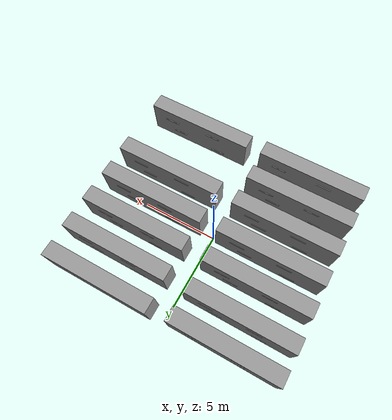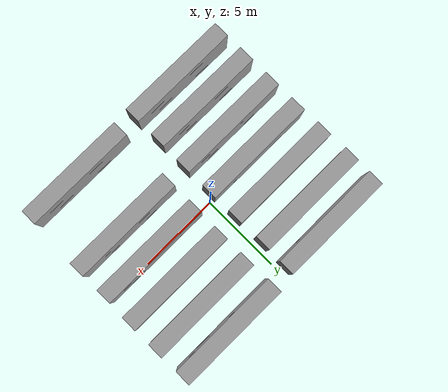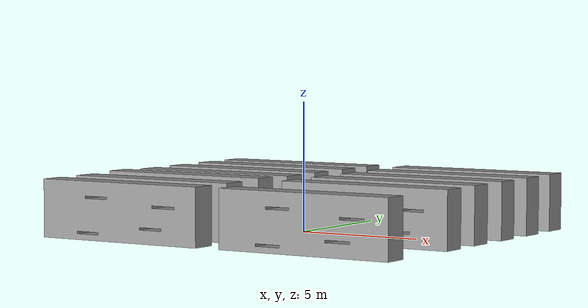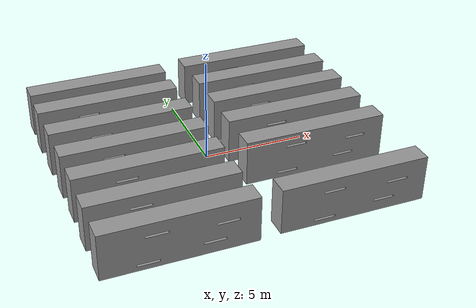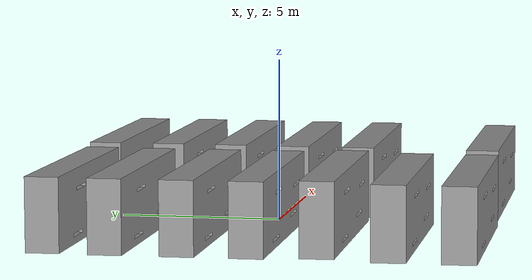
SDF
<?xml version='1.0'?>
<sdf version='1.6'>
  <model name='library_2'>
    <link name='link_0'>
      <inertial>
        <mass>1</mass>
        <inertia>
          <ixx>0.166667</ixx>
          <ixy>0</ixy>
          <ixz>0</ixz>
          <iyy>0.166667</iyy>
          <iyz>0</iyz>
          <izz>0.166667</izz>
        </inertia>
        <pose frame=''>0 0 0 0 -0 0</pose>
      </inertial>
      <pose frame=''>-3.69006 -6.33327 -0.003806 1.5686 -0 0</pose>
      <gravity>1</gravity>
      <self_collide>0</self_collide>
      <kinematic>0</kinematic>
      <enable_wind>0</enable_wind>
      <visual name='visual'>
        <pose frame=''>0 0 0 0 -0 0</pose>
        <geometry>
          <mesh>
            <uri>/home/larryyan/catkin_ws/src/indoor_robot/models/library/models/book-shelf.obj</uri>
            <scale>1 1 1</scale>
          </mesh>
        </geometry>
        <material>
          <lighting>1</lighting>
          <script>
            <uri>file://media/materials/scripts/gazebo.material</uri>
            <name>Gazebo/Grey</name>
          </script>
          <ambient>0 0 0 0</ambient>
          <diffuse>0 0 0 0</diffuse>
          <specular>0 0 0 0</specular>
          <emissive>0 0 0 0</emissive>
          <shader type='vertex'>
            <normal_map>__default__</normal_map>
          </shader>
        </material>
        <transparency>0</transparency>
        <cast_shadows>1</cast_shadows>
      </visual>
      <collision name='collision'>
        <laser_retro>0</laser_retro>
        <max_contacts>10</max_contacts>
        <pose frame=''>0 0 0 0 -0 0</pose>
        <geometry>
          <mesh>
            <uri>/home/larryyan/catkin_ws/src/indoor_robot/models/library/models/book-shelf.obj</uri>
            <scale>1 1 1</scale>
          </mesh>
        </geometry>
        <surface>
          <friction>
            <ode>
              <mu>1</mu>
              <mu2>1</mu2>
              <fdir1>0 0 0</fdir1>
              <slip1>0</slip1>
              <slip2>0</slip2>
            </ode>
            <torsional>
              <coefficient>1</coefficient>
              <patch_radius>0</patch_radius>
              <surface_radius>0</surface_radius>
              <use_patch_radius>1</use_patch_radius>
              <ode>
                <slip>0</slip>
              </ode>
            </torsional>
          </friction>
          <bounce>
            <restitution_coefficient>0</restitution_coefficient>
            <threshold>1e+06</threshold>
          </bounce>
          <contact>
            <collide_without_contact>0</collide_without_contact>
            <collide_without_contact_bitmask>1</collide_without_contact_bitmask>
            <collide_bitmask>1</collide_bitmask>
            <ode>
              <soft_cfm>0</soft_cfm>
              <soft_erp>0.2</soft_erp>
              <kp>1e+13</kp>
              <kd>1</kd>
              <max_vel>0.01</max_vel>
              <min_depth>0</min_depth>
            </ode>
            <bullet>
              <split_impulse>1</split_impulse>
              <split_impulse_penetration_threshold>-0.01</split_impulse_penetration_threshold>
              <soft_cfm>0</soft_cfm>
              <soft_erp>0.2</soft_erp>
              <kp>1e+13</kp>
              <kd>1</kd>
            </bullet>
          </contact>
        </surface>
      </collision>
    </link>
    <link name='link_0_clone'>
      <inertial>
        <mass>1</mass>
        <inertia>
          <ixx>0.166667</ixx>
          <ixy>0</ixy>
          <ixz>0</ixz>
          <iyy>0.166667</iyy>
          <iyz>0</iyz>
          <izz>0.166667</izz>
        </inertia>
        <pose frame=''>0 0 0 0 -0 0</pose>
      </inertial>
      <pose frame=''>-3.71001 -4.35599 -0.003806 1.5686 -0 0</pose>
      <gravity>1</gravity>
      <self_collide>0</self_collide>
      <kinematic>0</kinematic>
      <enable_wind>0</enable_wind>
      <visual name='visual'>
        <pose frame=''>0 0 0 0 -0 0</pose>
        <geometry>
          <mesh>
            <uri>/home/larryyan/catkin_ws/src/indoor_robot/models/library/models/book-shelf.obj</uri>
            <scale>1 1 1</scale>
          </mesh>
        </geometry>
        <material>
          <lighting>1</lighting>
          <script>
            <uri>file://media/materials/scripts/gazebo.material</uri>
            <name>Gazebo/Grey</name>
          </script>
          <ambient>0 0 0 0</ambient>
          <diffuse>0 0 0 0</diffuse>
          <specular>0 0 0 0</specular>
          <emissive>0 0 0 0</emissive>
          <shader type='vertex'>
            <normal_map>__default__</normal_map>
          </shader>
        </material>
        <transparency>0</transparency>
        <cast_shadows>1</cast_shadows>
      </visual>
      <collision name='collision'>
        <laser_retro>0</laser_retro>
        <max_contacts>10</max_contacts>
        <pose frame=''>0 0 0 0 -0 0</pose>
        <geometry>
          <mesh>
            <uri>/home/larryyan/catkin_ws/src/indoor_robot/models/library/models/book-shelf.obj</uri>
            <scale>1 1 1</scale>
          </mesh>
        </geometry>
        <surface>
          <friction>
            <ode>
              <mu>1</mu>
              <mu2>1</mu2>
              <fdir1>0 0 0</fdir1>
              <slip1>0</slip1>
              <slip2>0</slip2>
            </ode>
            <torsional>
              <coefficient>1</coefficient>
              <patch_radius>0</patch_radius>
              <surface_radius>0</surface_radius>
              <use_patch_radius>1</use_patch_radius>
              <ode>
                <slip>0</slip>
              </ode>
            </torsional>
          </friction>
          <bounce>
            <restitution_coefficient>0</restitution_coefficient>
            <threshold>1e+06</threshold>
          </bounce>
          <contact>
            <collide_without_contact>0</collide_without_contact>
            <collide_without_contact_bitmask>1</collide_without_contact_bitmask>
            <collide_bitmask>1</collide_bitmask>
            <ode>
              <soft_cfm>0</soft_cfm>
              <soft_erp>0.2</soft_erp>
              <kp>1e+13</kp>
              <kd>1</kd>
              <max_vel>0.01</max_vel>
              <min_depth>0</min_depth>
            </ode>
            <bullet>
              <split_impulse>1</split_impulse>
              <split_impulse_penetration_threshold>-0.01</split_impulse_penetration_threshold>
              <soft_cfm>0</soft_cfm>
              <soft_erp>0.2</soft_erp>
              <kp>1e+13</kp>
              <kd>1</kd>
            </bullet>
          </contact>
        </surface>
      </collision>
    </link>
    <link name='link_0_clone_0'>
      <inertial>
        <mass>1</mass>
        <inertia>
          <ixx>0.166667</ixx>
          <ixy>0</ixy>
          <ixz>0</ixz>
          <iyy>0.166667</iyy>
          <iyz>0</iyz>
          <izz>0.166667</izz>
        </inertia>
        <pose frame=''>0 0 0 0 -0 0</pose>
      </inertial>
      <pose frame=''>-3.69927 -2.33467 0.045672 1.5686 -0 0</pose>
      <gravity>1</gravity>
      <self_collide>0</self_collide>
      <kinematic>0</kinematic>
      <enable_wind>0</enable_wind>
      <visual name='visual'>
        <pose frame=''>0 0 0 0 -0 0</pose>
        <geometry>
          <mesh>
            <uri>/home/larryyan/catkin_ws/src/indoor_robot/models/library/models/book-shelf.obj</uri>
            <scale>1 1 1</scale>
          </mesh>
        </geometry>
        <material>
          <lighting>1</lighting>
          <script>
            <uri>file://media/materials/scripts/gazebo.material</uri>
            <name>Gazebo/Grey</name>
          </script>
          <ambient>0 0 0 0</ambient>
          <diffuse>0 0 0 0</diffuse>
          <specular>0 0 0 0</specular>
          <emissive>0 0 0 0</emissive>
          <shader type='vertex'>
            <normal_map>__default__</normal_map>
          </shader>
        </material>
        <transparency>0</transparency>
        <cast_shadows>1</cast_shadows>
      </visual>
      <collision name='collision'>
        <laser_retro>0</laser_retro>
        <max_contacts>10</max_contacts>
        <pose frame=''>0 0 0 0 -0 0</pose>
        <geometry>
          <mesh>
            <uri>/home/larryyan/catkin_ws/src/indoor_robot/models/library/models/book-shelf.obj</uri>
            <scale>1 1 1</scale>
          </mesh>
        </geometry>
        <surface>
          <friction>
            <ode>
              <mu>1</mu>
              <mu2>1</mu2>
              <fdir1>0 0 0</fdir1>
              <slip1>0</slip1>
              <slip2>0</slip2>
            </ode>
            <torsional>
              <coefficient>1</coefficient>
              <patch_radius>0</patch_radius>
              <surface_radius>0</surface_radius>
              <use_patch_radius>1</use_patch_radius>
              <ode>
                <slip>0</slip>
              </ode>
            </torsional>
          </friction>
          <bounce>
            <restitution_coefficient>0</restitution_coefficient>
            <threshold>1e+06</threshold>
          </bounce>
          <contact>
            <collide_without_contact>0</collide_without_contact>
            <collide_without_contact_bitmask>1</collide_without_contact_bitmask>
            <collide_bitmask>1</collide_bitmask>
            <ode>
              <soft_cfm>0</soft_cfm>
              <soft_erp>0.2</soft_erp>
              <kp>1e+13</kp>
              <kd>1</kd>
              <max_vel>0.01</max_vel>
              <min_depth>0</min_depth>
            </ode>
            <bullet>
              <split_impulse>1</split_impulse>
              <split_impulse_penetration_threshold>-0.01</split_impulse_penetration_threshold>
              <soft_cfm>0</soft_cfm>
              <soft_erp>0.2</soft_erp>
              <kp>1e+13</kp>
              <kd>1</kd>
            </bullet>
          </contact>
        </surface>
      </collision>
    </link>
    <link name='link_0_clone_1'>
      <inertial>
        <mass>1</mass>
        <inertia>
          <ixx>0.166667</ixx>
          <ixy>0</ixy>
          <ixz>0</ixz>
          <iyy>0.166667</iyy>
          <iyz>0</iyz>
          <izz>0.166667</izz>
        </inertia>
        <pose frame=''>0 0 0 0 -0 0</pose>
      </inertial>
      <pose frame=''>-3.71256 -0.32633 -0.003806 1.5686 -0 0</pose>
      <gravity>1</gravity>
      <self_collide>0</self_collide>
      <kinematic>0</kinematic>
      <enable_wind>0</enable_wind>
      <visual name='visual'>
        <pose frame=''>0 0 0 0 -0 0</pose>
        <geometry>
          <mesh>
            <uri>/home/larryyan/catkin_ws/src/indoor_robot/models/library/models/book-shelf.obj</uri>
            <scale>1 1 1</scale>
          </mesh>
        </geometry>
        <material>
          <lighting>1</lighting>
          <script>
            <uri>file://media/materials/scripts/gazebo.material</uri>
            <name>Gazebo/Grey</name>
          </script>
          <ambient>0 0 0 0</ambient>
          <diffuse>0 0 0 0</diffuse>
          <specular>0 0 0 0</specular>
          <emissive>0 0 0 0</emissive>
          <shader type='vertex'>
            <normal_map>__default__</normal_map>
          </shader>
        </material>
        <transparency>0</transparency>
        <cast_shadows>1</cast_shadows>
      </visual>
      <collision name='collision'>
        <laser_retro>0</laser_retro>
        <max_contacts>10</max_contacts>
        <pose frame=''>0 0 0 0 -0 0</pose>
        <geometry>
          <mesh>
            <uri>/home/larryyan/catkin_ws/src/indoor_robot/models/library/models/book-shelf.obj</uri>
            <scale>1 1 1</scale>
          </mesh>
        </geometry>
        <surface>
          <friction>
            <ode>
              <mu>1</mu>
              <mu2>1</mu2>
              <fdir1>0 0 0</fdir1>
              <slip1>0</slip1>
              <slip2>0</slip2>
            </ode>
            <torsional>
              <coefficient>1</coefficient>
              <patch_radius>0</patch_radius>
              <surface_radius>0</surface_radius>
              <use_patch_radius>1</use_patch_radius>
              <ode>
                <slip>0</slip>
              </ode>
            </torsional>
          </friction>
          <bounce>
            <restitution_coefficient>0</restitution_coefficient>
            <threshold>1e+06</threshold>
          </bounce>
          <contact>
            <collide_without_contact>0</collide_without_contact>
            <collide_without_contact_bitmask>1</collide_without_contact_bitmask>
            <collide_bitmask>1</collide_bitmask>
            <ode>
              <soft_cfm>0</soft_cfm>
              <soft_erp>0.2</soft_erp>
              <kp>1e+13</kp>
              <kd>1</kd>
              <max_vel>0.01</max_vel>
              <min_depth>0</min_depth>
            </ode>
            <bullet>
              <split_impulse>1</split_impulse>
              <split_impulse_penetration_threshold>-0.01</split_impulse_penetration_threshold>
              <soft_cfm>0</soft_cfm>
              <soft_erp>0.2</soft_erp>
              <kp>1e+13</kp>
              <kd>1</kd>
            </bullet>
          </contact>
        </surface>
      </collision>
    </link>
    <link name='link_0_clone_11'>
      <inertial>
        <mass>1</mass>
        <inertia>
          <ixx>0.166667</ixx>
          <ixy>0</ixy>
          <ixz>0</ixz>
          <iyy>0.166667</iyy>
          <iyz>0</iyz>
          <izz>0.166667</izz>
        </inertia>
        <pose frame=''>0 0 0 0 -0 0</pose>
      </inertial>
      <pose frame=''>4.27862 -6.25594 -0.003806 1.5686 -0 0</pose>
      <gravity>1</gravity>
      <self_collide>0</self_collide>
      <kinematic>0</kinematic>
      <enable_wind>0</enable_wind>
      <visual name='visual'>
        <pose frame=''>0 0 0 0 -0 0</pose>
        <geometry>
          <mesh>
            <uri>/home/larryyan/catkin_ws/src/indoor_robot/models/library/models/book-shelf.obj</uri>
            <scale>1 1 1</scale>
          </mesh>
        </geometry>
        <material>
          <lighting>1</lighting>
          <script>
            <uri>file://media/materials/scripts/gazebo.material</uri>
            <name>Gazebo/Grey</name>
          </script>
          <ambient>0 0 0 0</ambient>
          <diffuse>0 0 0 0</diffuse>
          <specular>0 0 0 0</specular>
          <emissive>0 0 0 0</emissive>
          <shader type='vertex'>
            <normal_map>__default__</normal_map>
          </shader>
        </material>
        <transparency>0</transparency>
        <cast_shadows>1</cast_shadows>
      </visual>
      <collision name='collision'>
        <laser_retro>0</laser_retro>
        <max_contacts>10</max_contacts>
        <pose frame=''>0 0 0 0 -0 0</pose>
        <geometry>
          <mesh>
            <uri>/home/larryyan/catkin_ws/src/indoor_robot/models/library/models/book-shelf.obj</uri>
            <scale>1 1 1</scale>
          </mesh>
        </geometry>
        <surface>
          <friction>
            <ode>
              <mu>1</mu>
              <mu2>1</mu2>
              <fdir1>0 0 0</fdir1>
              <slip1>0</slip1>
              <slip2>0</slip2>
            </ode>
            <torsional>
              <coefficient>1</coefficient>
              <patch_radius>0</patch_radius>
              <surface_radius>0</surface_radius>
              <use_patch_radius>1</use_patch_radius>
              <ode>
                <slip>0</slip>
              </ode>
            </torsional>
          </friction>
          <bounce>
            <restitution_coefficient>0</restitution_coefficient>
            <threshold>1e+06</threshold>
          </bounce>
          <contact>
            <collide_without_contact>0</collide_without_contact>
            <collide_without_contact_bitmask>1</collide_without_contact_bitmask>
            <collide_bitmask>1</collide_bitmask>
            <ode>
              <soft_cfm>0</soft_cfm>
              <soft_erp>0.2</soft_erp>
              <kp>1e+13</kp>
              <kd>1</kd>
              <max_vel>0.01</max_vel>
              <min_depth>0</min_depth>
            </ode>
            <bullet>
              <split_impulse>1</split_impulse>
              <split_impulse_penetration_threshold>-0.01</split_impulse_penetration_threshold>
              <soft_cfm>0</soft_cfm>
              <soft_erp>0.2</soft_erp>
              <kp>1e+13</kp>
              <kd>1</kd>
            </bullet>
          </contact>
        </surface>
      </collision>
    </link>
    <link name='link_0_clone_2'>
      <inertial>
        <mass>1</mass>
        <inertia>
          <ixx>0.166667</ixx>
          <ixy>0</ixy>
          <ixz>0</ixz>
          <iyy>0.166667</iyy>
          <iyz>0</iyz>
          <izz>0.166667</izz>
        </inertia>
        <pose frame=''>0 0 0 0 -0 0</pose>
      </inertial>
      <pose frame=''>-3.75559 1.66628 -0.003806 1.5686 -0 0</pose>
      <gravity>1</gravity>
      <self_collide>0</self_collide>
      <kinematic>0</kinematic>
      <enable_wind>0</enable_wind>
      <visual name='visual'>
        <pose frame=''>0 0 0 0 -0 0</pose>
        <geometry>
          <mesh>
            <uri>/home/larryyan/catkin_ws/src/indoor_robot/models/library/models/book-shelf.obj</uri>
            <scale>1 1 1</scale>
          </mesh>
        </geometry>
        <material>
          <lighting>1</lighting>
          <script>
            <uri>file://media/materials/scripts/gazebo.material</uri>
            <name>Gazebo/Grey</name>
          </script>
          <ambient>0 0 0 0</ambient>
          <diffuse>0 0 0 0</diffuse>
          <specular>0 0 0 0</specular>
          <emissive>0 0 0 0</emissive>
          <shader type='vertex'>
            <normal_map>__default__</normal_map>
          </shader>
        </material>
        <transparency>0</transparency>
        <cast_shadows>1</cast_shadows>
      </visual>
      <collision name='collision'>
        <laser_retro>0</laser_retro>
        <max_contacts>10</max_contacts>
        <pose frame=''>0 0 0 0 -0 0</pose>
        <geometry>
          <mesh>
            <uri>/home/larryyan/catkin_ws/src/indoor_robot/models/library/models/book-shelf.obj</uri>
            <scale>1 1 1</scale>
          </mesh>
        </geometry>
        <surface>
          <friction>
            <ode>
              <mu>1</mu>
              <mu2>1</mu2>
              <fdir1>0 0 0</fdir1>
              <slip1>0</slip1>
              <slip2>0</slip2>
            </ode>
            <torsional>
              <coefficient>1</coefficient>
              <patch_radius>0</patch_radius>
              <surface_radius>0</surface_radius>
              <use_patch_radius>1</use_patch_radius>
              <ode>
                <slip>0</slip>
              </ode>
            </torsional>
          </friction>
          <bounce>
            <restitution_coefficient>0</restitution_coefficient>
            <threshold>1e+06</threshold>
          </bounce>
          <contact>
            <collide_without_contact>0</collide_without_contact>
            <collide_without_contact_bitmask>1</collide_without_contact_bitmask>
            <collide_bitmask>1</collide_bitmask>
            <ode>
              <soft_cfm>0</soft_cfm>
              <soft_erp>0.2</soft_erp>
              <kp>1e+13</kp>
              <kd>1</kd>
              <max_vel>0.01</max_vel>
              <min_depth>0</min_depth>
            </ode>
            <bullet>
              <split_impulse>1</split_impulse>
              <split_impulse_penetration_threshold>-0.01</split_impulse_penetration_threshold>
              <soft_cfm>0</soft_cfm>
              <soft_erp>0.2</soft_erp>
              <kp>1e+13</kp>
              <kd>1</kd>
            </bullet>
          </contact>
        </surface>
      </collision>
    </link>
    <link name='link_0_clone_3'>
      <inertial>
        <mass>1</mass>
        <inertia>
          <ixx>0.166667</ixx>
          <ixy>0</ixy>
          <ixz>0</ixz>
          <iyy>0.166667</iyy>
          <iyz>0</iyz>
          <izz>0.166667</izz>
        </inertia>
        <pose frame=''>0 0 0 0 -0 0</pose>
      </inertial>
      <pose frame=''>-3.79987 3.74751 -0.003806 1.5686 -0 0</pose>
      <gravity>1</gravity>
      <self_collide>0</self_collide>
      <kinematic>0</kinematic>
      <enable_wind>0</enable_wind>
      <visual name='visual'>
        <pose frame=''>0 0 0 0 -0 0</pose>
        <geometry>
          <mesh>
            <uri>/home/larryyan/catkin_ws/src/indoor_robot/models/library/models/book-shelf.obj</uri>
            <scale>1 1 1</scale>
          </mesh>
        </geometry>
        <material>
          <lighting>1</lighting>
          <script>
            <uri>file://media/materials/scripts/gazebo.material</uri>
            <name>Gazebo/Grey</name>
          </script>
          <ambient>0 0 0 0</ambient>
          <diffuse>0 0 0 0</diffuse>
          <specular>0 0 0 0</specular>
          <emissive>0 0 0 0</emissive>
          <shader type='vertex'>
            <normal_map>__default__</normal_map>
          </shader>
        </material>
        <transparency>0</transparency>
        <cast_shadows>1</cast_shadows>
      </visual>
      <collision name='collision'>
        <laser_retro>0</laser_retro>
        <max_contacts>10</max_contacts>
        <pose frame=''>0 0 0 0 -0 0</pose>
        <geometry>
          <mesh>
            <uri>/home/larryyan/catkin_ws/src/indoor_robot/models/library/models/book-shelf.obj</uri>
            <scale>1 1 1</scale>
          </mesh>
        </geometry>
        <surface>
          <friction>
            <ode>
              <mu>1</mu>
              <mu2>1</mu2>
              <fdir1>0 0 0</fdir1>
              <slip1>0</slip1>
              <slip2>0</slip2>
            </ode>
            <torsional>
              <coefficient>1</coefficient>
              <patch_radius>0</patch_radius>
              <surface_radius>0</surface_radius>
              <use_patch_radius>1</use_patch_radius>
              <ode>
                <slip>0</slip>
              </ode>
            </torsional>
          </friction>
          <bounce>
            <restitution_coefficient>0</restitution_coefficient>
            <threshold>1e+06</threshold>
          </bounce>
          <contact>
            <collide_without_contact>0</collide_without_contact>
            <collide_without_contact_bitmask>1</collide_without_contact_bitmask>
            <collide_bitmask>1</collide_bitmask>
            <ode>
              <soft_cfm>0</soft_cfm>
              <soft_erp>0.2</soft_erp>
              <kp>1e+13</kp>
              <kd>1</kd>
              <max_vel>0.01</max_vel>
              <min_depth>0</min_depth>
            </ode>
            <bullet>
              <split_impulse>1</split_impulse>
              <split_impulse_penetration_threshold>-0.01</split_impulse_penetration_threshold>
              <soft_cfm>0</soft_cfm>
              <soft_erp>0.2</soft_erp>
              <kp>1e+13</kp>
              <kd>1</kd>
            </bullet>
          </contact>
        </surface>
      </collision>
    </link>
    <link name='link_0_clone_4'>
      <inertial>
        <mass>1</mass>
        <inertia>
          <ixx>0.166667</ixx>
          <ixy>0</ixy>
          <ixz>0</ixz>
          <iyy>0.166667</iyy>
          <iyz>0</iyz>
          <izz>0.166667</izz>
        </inertia>
        <pose frame=''>0 0 0 0 -0 0</pose>
      </inertial>
      <pose frame=''>-3.77388 5.5794 -0.003806 1.5686 -0 0</pose>
      <gravity>1</gravity>
      <self_collide>0</self_collide>
      <kinematic>0</kinematic>
      <enable_wind>0</enable_wind>
      <visual name='visual'>
        <pose frame=''>0 0 0 0 -0 0</pose>
        <geometry>
          <mesh>
            <uri>/home/larryyan/catkin_ws/src/indoor_robot/models/library/models/book-shelf.obj</uri>
            <scale>1 1 1</scale>
          </mesh>
        </geometry>
        <material>
          <lighting>1</lighting>
          <script>
            <uri>file://media/materials/scripts/gazebo.material</uri>
            <name>Gazebo/Grey</name>
          </script>
          <ambient>0 0 0 0</ambient>
          <diffuse>0 0 0 0</diffuse>
          <specular>0 0 0 0</specular>
          <emissive>0 0 0 0</emissive>
          <shader type='vertex'>
            <normal_map>__default__</normal_map>
          </shader>
        </material>
        <transparency>0</transparency>
        <cast_shadows>1</cast_shadows>
      </visual>
      <collision name='collision'>
        <laser_retro>0</laser_retro>
        <max_contacts>10</max_contacts>
        <pose frame=''>0 0 0 0 -0 0</pose>
        <geometry>
          <mesh>
            <uri>/home/larryyan/catkin_ws/src/indoor_robot/models/library/models/book-shelf.obj</uri>
            <scale>1 1 1</scale>
          </mesh>
        </geometry>
        <surface>
          <friction>
            <ode>
              <mu>1</mu>
              <mu2>1</mu2>
              <fdir1>0 0 0</fdir1>
              <slip1>0</slip1>
              <slip2>0</slip2>
            </ode>
            <torsional>
              <coefficient>1</coefficient>
              <patch_radius>0</patch_radius>
              <surface_radius>0</surface_radius>
              <use_patch_radius>1</use_patch_radius>
              <ode>
                <slip>0</slip>
              </ode>
            </torsional>
          </friction>
          <bounce>
            <restitution_coefficient>0</restitution_coefficient>
            <threshold>1e+06</threshold>
          </bounce>
          <contact>
            <collide_without_contact>0</collide_without_contact>
            <collide_without_contact_bitmask>1</collide_without_contact_bitmask>
            <collide_bitmask>1</collide_bitmask>
            <ode>
              <soft_cfm>0</soft_cfm>
              <soft_erp>0.2</soft_erp>
              <kp>1e+13</kp>
              <kd>1</kd>
              <max_vel>0.01</max_vel>
              <min_depth>0</min_depth>
            </ode>
            <bullet>
              <split_impulse>1</split_impulse>
              <split_impulse_penetration_threshold>-0.01</split_impulse_penetration_threshold>
              <soft_cfm>0</soft_cfm>
              <soft_erp>0.2</soft_erp>
              <kp>1e+13</kp>
              <kd>1</kd>
            </bullet>
          </contact>
        </surface>
      </collision>
    </link>
    <link name='link_0_clone_5'>
      <inertial>
        <mass>1</mass>
        <inertia>
          <ixx>0.166667</ixx>
          <ixy>0</ixy>
          <ixz>0</ixz>
          <iyy>0.166667</iyy>
          <iyz>0</iyz>
          <izz>0.166667</izz>
        </inertia>
        <pose frame=''>0 0 0 0 -0 0</pose>
      </inertial>
      <pose frame=''>4.34047 5.78579 -0.003806 1.5686 -0 0</pose>
      <gravity>1</gravity>
      <self_collide>0</self_collide>
      <kinematic>0</kinematic>
      <enable_wind>0</enable_wind>
      <visual name='visual'>
        <pose frame=''>0 0 0 0 -0 0</pose>
        <geometry>
          <mesh>
            <uri>/home/larryyan/catkin_ws/src/indoor_robot/models/library/models/book-shelf.obj</uri>
            <scale>1 1 1</scale>
          </mesh>
        </geometry>
        <material>
          <lighting>1</lighting>
          <script>
            <uri>file://media/materials/scripts/gazebo.material</uri>
            <name>Gazebo/Grey</name>
          </script>
          <ambient>0 0 0 0</ambient>
          <diffuse>0 0 0 0</diffuse>
          <specular>0 0 0 0</specular>
          <emissive>0 0 0 0</emissive>
          <shader type='vertex'>
            <normal_map>__default__</normal_map>
          </shader>
        </material>
        <transparency>0</transparency>
        <cast_shadows>1</cast_shadows>
      </visual>
      <collision name='collision'>
        <laser_retro>0</laser_retro>
        <max_contacts>10</max_contacts>
        <pose frame=''>0 0 0 0 -0 0</pose>
        <geometry>
          <mesh>
            <uri>/home/larryyan/catkin_ws/src/indoor_robot/models/library/models/book-shelf.obj</uri>
            <scale>1 1 1</scale>
          </mesh>
        </geometry>
        <surface>
          <friction>
            <ode>
              <mu>1</mu>
              <mu2>1</mu2>
              <fdir1>0 0 0</fdir1>
              <slip1>0</slip1>
              <slip2>0</slip2>
            </ode>
            <torsional>
              <coefficient>1</coefficient>
              <patch_radius>0</patch_radius>
              <surface_radius>0</surface_radius>
              <use_patch_radius>1</use_patch_radius>
              <ode>
                <slip>0</slip>
              </ode>
            </torsional>
          </friction>
          <bounce>
            <restitution_coefficient>0</restitution_coefficient>
            <threshold>1e+06</threshold>
          </bounce>
          <contact>
            <collide_without_contact>0</collide_without_contact>
            <collide_without_contact_bitmask>1</collide_without_contact_bitmask>
            <collide_bitmask>1</collide_bitmask>
            <ode>
              <soft_cfm>0</soft_cfm>
              <soft_erp>0.2</soft_erp>
              <kp>1e+13</kp>
              <kd>1</kd>
              <max_vel>0.01</max_vel>
              <min_depth>0</min_depth>
            </ode>
            <bullet>
              <split_impulse>1</split_impulse>
              <split_impulse_penetration_threshold>-0.01</split_impulse_penetration_threshold>
              <soft_cfm>0</soft_cfm>
              <soft_erp>0.2</soft_erp>
              <kp>1e+13</kp>
              <kd>1</kd>
            </bullet>
          </contact>
        </surface>
      </collision>
    </link>
    <link name='link_0_clone_6'>
      <inertial>
        <mass>1</mass>
        <inertia>
          <ixx>0.166667</ixx>
          <ixy>0</ixy>
          <ixz>0</ixz>
          <iyy>0.166667</iyy>
          <iyz>0</iyz>
          <izz>0.166667</izz>
        </inertia>
        <pose frame=''>0 0 0 0 -0 0</pose>
      </inertial>
      <pose frame=''>4.39332 3.74325 -0.003806 1.5686 -0 0</pose>
      <gravity>1</gravity>
      <self_collide>0</self_collide>
      <kinematic>0</kinematic>
      <enable_wind>0</enable_wind>
      <visual name='visual'>
        <pose frame=''>0 0 0 0 -0 0</pose>
        <geometry>
          <mesh>
            <uri>/home/larryyan/catkin_ws/src/indoor_robot/models/library/models/book-shelf.obj</uri>
            <scale>1 1 1</scale>
          </mesh>
        </geometry>
        <material>
          <lighting>1</lighting>
          <script>
            <uri>file://media/materials/scripts/gazebo.material</uri>
            <name>Gazebo/Grey</name>
          </script>
          <ambient>0 0 0 0</ambient>
          <diffuse>0 0 0 0</diffuse>
          <specular>0 0 0 0</specular>
          <emissive>0 0 0 0</emissive>
          <shader type='vertex'>
            <normal_map>__default__</normal_map>
          </shader>
        </material>
        <transparency>0</transparency>
        <cast_shadows>1</cast_shadows>
      </visual>
      <collision name='collision'>
        <laser_retro>0</laser_retro>
        <max_contacts>10</max_contacts>
        <pose frame=''>0 0 0 0 -0 0</pose>
        <geometry>
          <mesh>
            <uri>/home/larryyan/catkin_ws/src/indoor_robot/models/library/models/book-shelf.obj</uri>
            <scale>1 1 1</scale>
          </mesh>
        </geometry>
        <surface>
          <friction>
            <ode>
              <mu>1</mu>
              <mu2>1</mu2>
              <fdir1>0 0 0</fdir1>
              <slip1>0</slip1>
              <slip2>0</slip2>
            </ode>
            <torsional>
              <coefficient>1</coefficient>
              <patch_radius>0</patch_radius>
              <surface_radius>0</surface_radius>
              <use_patch_radius>1</use_patch_radius>
              <ode>
                <slip>0</slip>
              </ode>
            </torsional>
          </friction>
          <bounce>
            <restitution_coefficient>0</restitution_coefficient>
            <threshold>1e+06</threshold>
          </bounce>
          <contact>
            <collide_without_contact>0</collide_without_contact>
            <collide_without_contact_bitmask>1</collide_without_contact_bitmask>
            <collide_bitmask>1</collide_bitmask>
            <ode>
              <soft_cfm>0</soft_cfm>
              <soft_erp>0.2</soft_erp>
              <kp>1e+13</kp>
              <kd>1</kd>
              <max_vel>0.01</max_vel>
              <min_depth>0</min_depth>
            </ode>
            <bullet>
              <split_impulse>1</split_impulse>
              <split_impulse_penetration_threshold>-0.01</split_impulse_penetration_threshold>
              <soft_cfm>0</soft_cfm>
              <soft_erp>0.2</soft_erp>
              <kp>1e+13</kp>
              <kd>1</kd>
            </bullet>
          </contact>
        </surface>
      </collision>
    </link>
    <link name='link_0_clone_7'>
      <inertial>
        <mass>1</mass>
        <inertia>
          <ixx>0.166667</ixx>
          <ixy>0</ixy>
          <ixz>0</ixz>
          <iyy>0.166667</iyy>
          <iyz>0</iyz>
          <izz>0.166667</izz>
        </inertia>
        <pose frame=''>0 0 0 0 -0 0</pose>
      </inertial>
      <pose frame=''>4.39733 1.72192 -0.003806 1.5686 -0 0</pose>
      <gravity>1</gravity>
      <self_collide>0</self_collide>
      <kinematic>0</kinematic>
      <enable_wind>0</enable_wind>
      <visual name='visual'>
        <pose frame=''>0 0 0 0 -0 0</pose>
        <geometry>
          <mesh>
            <uri>/home/larryyan/catkin_ws/src/indoor_robot/models/library/models/book-shelf.obj</uri>
            <scale>1 1 1</scale>
          </mesh>
        </geometry>
        <material>
          <lighting>1</lighting>
          <script>
            <uri>file://media/materials/scripts/gazebo.material</uri>
            <name>Gazebo/Grey</name>
          </script>
          <ambient>0 0 0 0</ambient>
          <diffuse>0 0 0 0</diffuse>
          <specular>0 0 0 0</specular>
          <emissive>0 0 0 0</emissive>
          <shader type='vertex'>
            <normal_map>__default__</normal_map>
          </shader>
        </material>
        <transparency>0</transparency>
        <cast_shadows>1</cast_shadows>
      </visual>
      <collision name='collision'>
        <laser_retro>0</laser_retro>
        <max_contacts>10</max_contacts>
        <pose frame=''>0 0 0 0 -0 0</pose>
        <geometry>
          <mesh>
            <uri>/home/larryyan/catkin_ws/src/indoor_robot/models/library/models/book-shelf.obj</uri>
            <scale>1 1 1</scale>
          </mesh>
        </geometry>
        <surface>
          <friction>
            <ode>
              <mu>1</mu>
              <mu2>1</mu2>
              <fdir1>0 0 0</fdir1>
              <slip1>0</slip1>
              <slip2>0</slip2>
            </ode>
            <torsional>
              <coefficient>1</coefficient>
              <patch_radius>0</patch_radius>
              <surface_radius>0</surface_radius>
              <use_patch_radius>1</use_patch_radius>
              <ode>
                <slip>0</slip>
              </ode>
            </torsional>
          </friction>
          <bounce>
            <restitution_coefficient>0</restitution_coefficient>
            <threshold>1e+06</threshold>
          </bounce>
          <contact>
            <collide_without_contact>0</collide_without_contact>
            <collide_without_contact_bitmask>1</collide_without_contact_bitmask>
            <collide_bitmask>1</collide_bitmask>
            <ode>
              <soft_cfm>0</soft_cfm>
              <soft_erp>0.2</soft_erp>
              <kp>1e+13</kp>
              <kd>1</kd>
              <max_vel>0.01</max_vel>
              <min_depth>0</min_depth>
            </ode>
            <bullet>
              <split_impulse>1</split_impulse>
              <split_impulse_penetration_threshold>-0.01</split_impulse_penetration_threshold>
              <soft_cfm>0</soft_cfm>
              <soft_erp>0.2</soft_erp>
              <kp>1e+13</kp>
              <kd>1</kd>
            </bullet>
          </contact>
        </surface>
      </collision>
    </link>
    <link name='link_0_clone_8'>
      <inertial>
        <mass>1</mass>
        <inertia>
          <ixx>0.166667</ixx>
          <ixy>0</ixy>
          <ixz>0</ixz>
          <iyy>0.166667</iyy>
          <iyz>0</iyz>
          <izz>0.166667</izz>
        </inertia>
        <pose frame=''>0 0 0 0 -0 0</pose>
      </inertial>
      <pose frame=''>4.34963 -0.285763 -0.003806 1.5686 -0 0</pose>
      <gravity>1</gravity>
      <self_collide>0</self_collide>
      <kinematic>0</kinematic>
      <enable_wind>0</enable_wind>
      <visual name='visual'>
        <pose frame=''>0 0 0 0 -0 0</pose>
        <geometry>
          <mesh>
            <uri>/home/larryyan/catkin_ws/src/indoor_robot/models/library/models/book-shelf.obj</uri>
            <scale>1 1 1</scale>
          </mesh>
        </geometry>
        <material>
          <lighting>1</lighting>
          <script>
            <uri>file://media/materials/scripts/gazebo.material</uri>
            <name>Gazebo/Grey</name>
          </script>
          <ambient>0 0 0 0</ambient>
          <diffuse>0 0 0 0</diffuse>
          <specular>0 0 0 0</specular>
          <emissive>0 0 0 0</emissive>
          <shader type='vertex'>
            <normal_map>__default__</normal_map>
          </shader>
        </material>
        <transparency>0</transparency>
        <cast_shadows>1</cast_shadows>
      </visual>
      <collision name='collision'>
        <laser_retro>0</laser_retro>
        <max_contacts>10</max_contacts>
        <pose frame=''>0 0 0 0 -0 0</pose>
        <geometry>
          <mesh>
            <uri>/home/larryyan/catkin_ws/src/indoor_robot/models/library/models/book-shelf.obj</uri>
            <scale>1 1 1</scale>
          </mesh>
        </geometry>
        <surface>
          <friction>
            <ode>
              <mu>1</mu>
              <mu2>1</mu2>
              <fdir1>0 0 0</fdir1>
              <slip1>0</slip1>
              <slip2>0</slip2>
            </ode>
            <torsional>
              <coefficient>1</coefficient>
              <patch_radius>0</patch_radius>
              <surface_radius>0</surface_radius>
              <use_patch_radius>1</use_patch_radius>
              <ode>
                <slip>0</slip>
              </ode>
            </torsional>
          </friction>
          <bounce>
            <restitution_coefficient>0</restitution_coefficient>
            <threshold>1e+06</threshold>
          </bounce>
          <contact>
            <collide_without_contact>0</collide_without_contact>
            <collide_without_contact_bitmask>1</collide_without_contact_bitmask>
            <collide_bitmask>1</collide_bitmask>
            <ode>
              <soft_cfm>0</soft_cfm>
              <soft_erp>0.2</soft_erp>
              <kp>1e+13</kp>
              <kd>1</kd>
              <max_vel>0.01</max_vel>
              <min_depth>0</min_depth>
            </ode>
            <bullet>
              <split_impulse>1</split_impulse>
              <split_impulse_penetration_threshold>-0.01</split_impulse_penetration_threshold>
              <soft_cfm>0</soft_cfm>
              <soft_erp>0.2</soft_erp>
              <kp>1e+13</kp>
              <kd>1</kd>
            </bullet>
          </contact>
        </surface>
      </collision>
    </link>
    <link name='link_0_clone_9'>
      <inertial>
        <mass>1</mass>
        <inertia>
          <ixx>0.166667</ixx>
          <ixy>0</ixy>
          <ixz>0</ixz>
          <iyy>0.166667</iyy>
          <iyz>0</iyz>
          <izz>0.166667</izz>
        </inertia>
        <pose frame=''>0 0 0 0 -0 0</pose>
      </inertial>
      <pose frame=''>4.38185 -2.35219 -0.003806 1.5686 -0 0</pose>
      <gravity>1</gravity>
      <self_collide>0</self_collide>
      <kinematic>0</kinematic>
      <enable_wind>0</enable_wind>
      <visual name='visual'>
        <pose frame=''>0 0 0 0 -0 0</pose>
        <geometry>
          <mesh>
            <uri>/home/larryyan/catkin_ws/src/indoor_robot/models/library/models/book-shelf.obj</uri>
            <scale>1 1 1</scale>
          </mesh>
        </geometry>
        <material>
          <lighting>1</lighting>
          <script>
            <uri>file://media/materials/scripts/gazebo.material</uri>
            <name>Gazebo/Grey</name>
          </script>
          <ambient>0 0 0 0</ambient>
          <diffuse>0 0 0 0</diffuse>
          <specular>0 0 0 0</specular>
          <emissive>0 0 0 0</emissive>
          <shader type='vertex'>
            <normal_map>__default__</normal_map>
          </shader>
        </material>
        <transparency>0</transparency>
        <cast_shadows>1</cast_shadows>
      </visual>
      <collision name='collision'>
        <laser_retro>0</laser_retro>
        <max_contacts>10</max_contacts>
        <pose frame=''>0 0 0 0 -0 0</pose>
        <geometry>
          <mesh>
            <uri>/home/larryyan/catkin_ws/src/indoor_robot/models/library/models/book-shelf.obj</uri>
            <scale>1 1 1</scale>
          </mesh>
        </geometry>
        <surface>
          <friction>
            <ode>
              <mu>1</mu>
              <mu2>1</mu2>
              <fdir1>0 0 0</fdir1>
              <slip1>0</slip1>
              <slip2>0</slip2>
            </ode>
            <torsional>
              <coefficient>1</coefficient>
              <patch_radius>0</patch_radius>
              <surface_radius>0</surface_radius>
              <use_patch_radius>1</use_patch_radius>
              <ode>
                <slip>0</slip>
              </ode>
            </torsional>
          </friction>
          <bounce>
            <restitution_coefficient>0</restitution_coefficient>
            <threshold>1e+06</threshold>
          </bounce>
          <contact>
            <collide_without_contact>0</collide_without_contact>
            <collide_without_contact_bitmask>1</collide_without_contact_bitmask>
            <collide_bitmask>1</collide_bitmask>
            <ode>
              <soft_cfm>0</soft_cfm>
              <soft_erp>0.2</soft_erp>
              <kp>1e+13</kp>
              <kd>1</kd>
              <max_vel>0.01</max_vel>
              <min_depth>0</min_depth>
            </ode>
            <bullet>
              <split_impulse>1</split_impulse>
              <split_impulse_penetration_threshold>-0.01</split_impulse_penetration_threshold>
              <soft_cfm>0</soft_cfm>
              <soft_erp>0.2</soft_erp>
              <kp>1e+13</kp>
              <kd>1</kd>
            </bullet>
          </contact>
        </surface>
      </collision>
    </link>
    <static>0</static>
    <allow_auto_disable>1</allow_auto_disable>
  </model>
</sdf>
